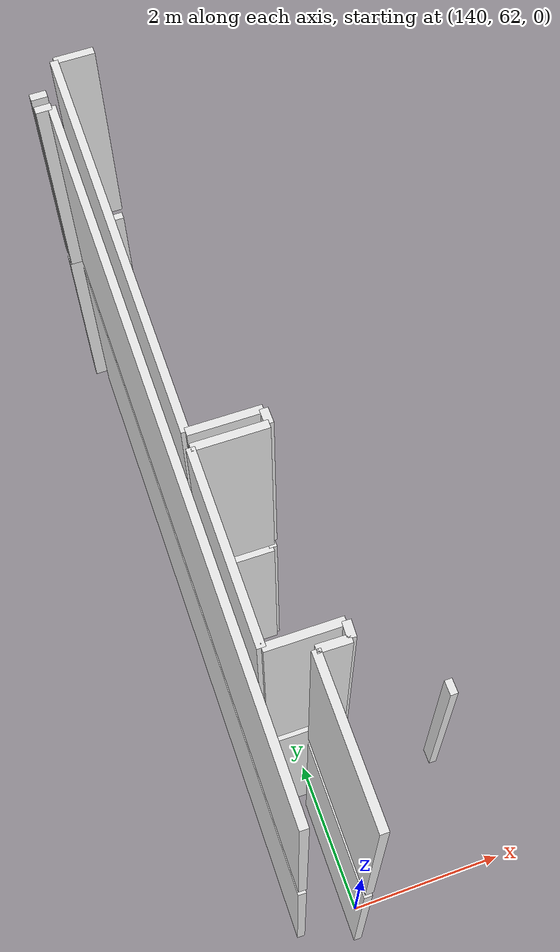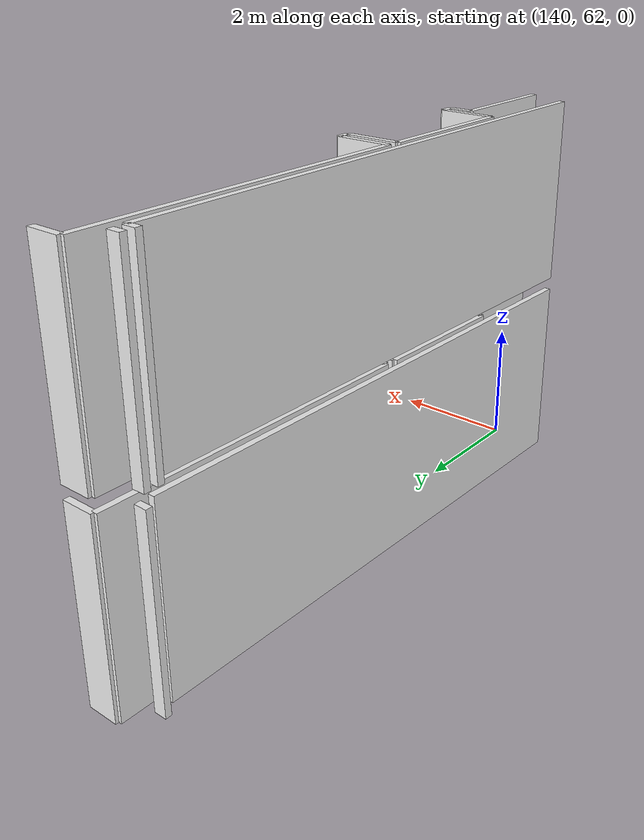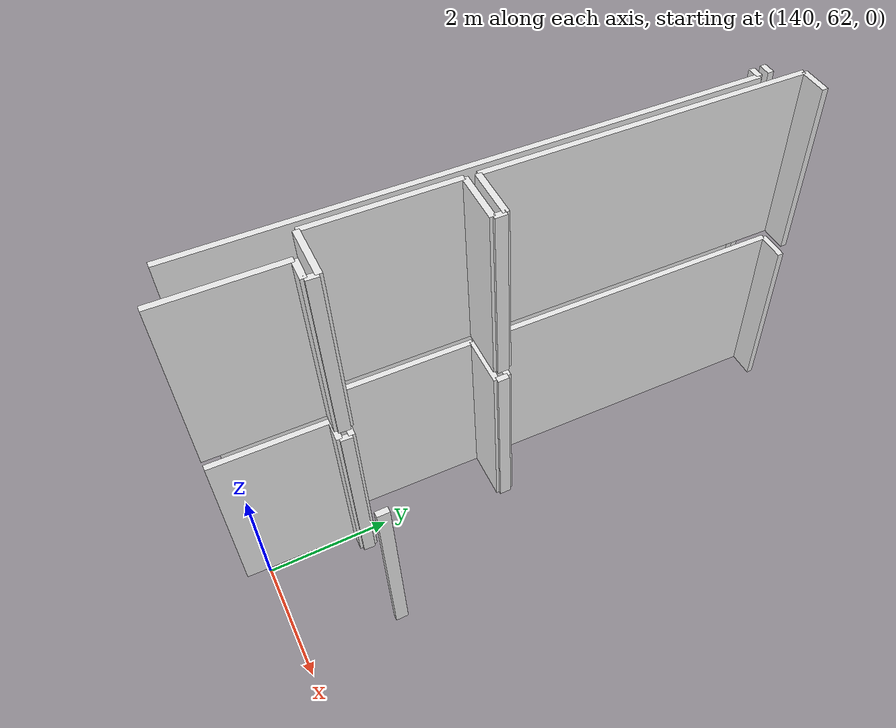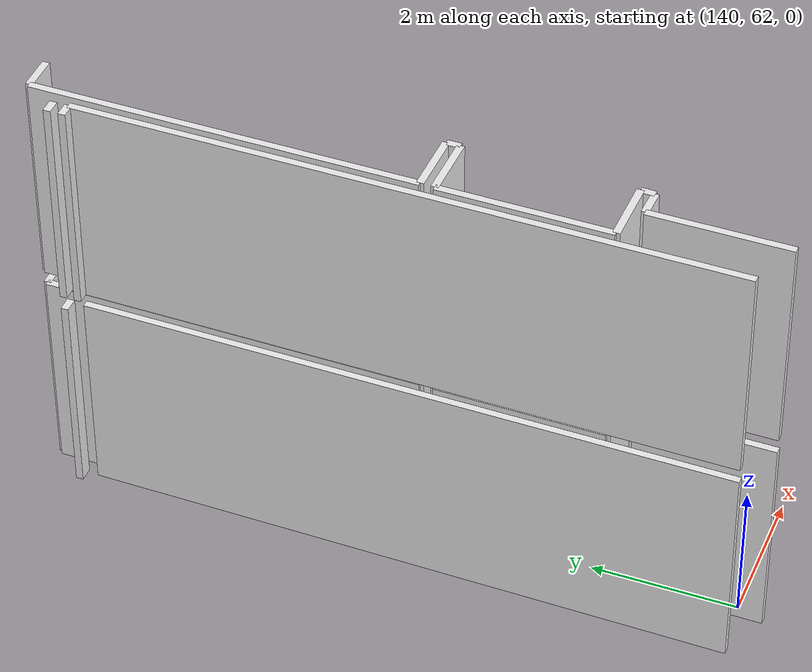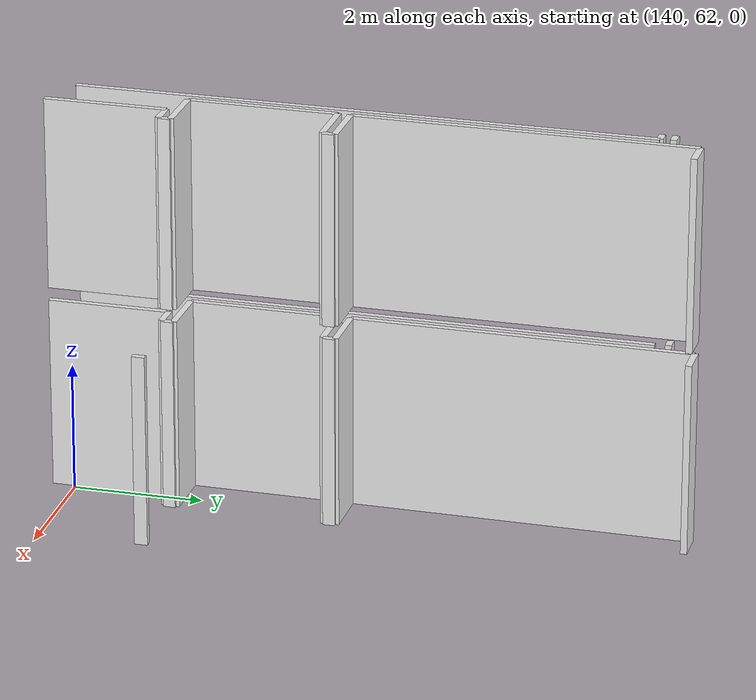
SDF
<sdf version="1.6">
 <world name="default">
  <model name="wall_139.9_66.0_0.0">
   <static>true</static>
   <pose>139.88000000000466 65.99500000011176 1.5 0 0 3.129965270893089</pose>
   <link name="link">
    <visual name="visual">
     <geometry><box><size>0.860058137553213 0.1 3</size></box></geometry>
     <material>
      <script><uri>file://media/materials/scripts/gazebo.material</uri><name>Gazebo/White</name></script>
     </material>
    </visual>
   </link>
  </model>
  <model name="wall_139.4_64.9_0.0">
   <static>true</static>
   <pose>139.43499999999767 64.85000000009313 1.5 0 0 -1.583839065438706</pose>
   <link name="link">
    <visual name="visual">
     <geometry><box><size>2.3001956436670468 0.1 3</size></box></geometry>
     <material>
      <script><uri>file://media/materials/scripts/gazebo.material</uri><name>Gazebo/White</name></script>
     </material>
    </visual>
   </link>
  </model>
  <model name="wall_139.9_63.7_0.0">
   <static>true</static>
   <pose>139.85499999998137 63.69500000006519 1.5 0 0 -0.011493746993381555</pose>
   <link name="link">
    <visual name="visual">
     <geometry><box><size>0.870057469364375 0.1 3</size></box></geometry>
     <material>
      <script><uri>file://media/materials/scripts/gazebo.material</uri><name>Gazebo/White</name></script>
     </material>
    </visual>
   </link>
  </model>
  <model name="wall_139.2_71.0_0.0">
   <static>true</static>
   <pose>139.22000000000116 70.97000000020489 1.5 0 0 0.0</pose>
   <link name="link">
    <visual name="visual">
     <geometry><box><size>0.20000000001164153 0.1 3</size></box></geometry>
     <material>
      <script><uri>file://media/materials/scripts/gazebo.material</uri><name>Gazebo/White</name></script>
     </material>
    </visual>
   </link>
  </model>
  <model name="wall_139.8_71.4_0.0">
   <static>true</static>
   <pose>139.77500000002328 71.41000000014901 1.5 0 0 3.141592653589793</pose>
   <link name="link">
    <visual name="visual">
     <geometry><box><size>0.4899999999906868 0.1 3</size></box></geometry>
     <material>
      <script><uri>file://media/materials/scripts/gazebo.material</uri><name>Gazebo/White</name></script>
     </material>
    </visual>
   </link>
  </model>
  <model name="wall_139.5_68.8_0.0">
   <static>true</static>
   <pose>139.49500000002445 68.80000000004657 1.5 0 0 -1.5842054847435334</pose>
   <link name="link">
    <visual name="visual">
     <geometry><box><size>5.220469327765468 0.1 3</size></box></geometry>
     <material>
      <script><uri>file://media/materials/scripts/gazebo.material</uri><name>Gazebo/White</name></script>
     </material>
    </visual>
   </link>
  </model>
  <model name="wall_139.9_66.2_0.0">
   <static>true</static>
   <pose>139.8850000000093 66.18500000005588 1.5 0 0 -0.011764162887155684</pose>
   <link name="link">
    <visual name="visual">
     <geometry><box><size>0.8500588214682255 0.1 3</size></box></geometry>
     <material>
      <script><uri>file://media/materials/scripts/gazebo.material</uri><name>Gazebo/White</name></script>
     </material>
    </visual>
   </link>
  </model>
  <model name="wall_140.3_66.1_0.0">
   <static>true</static>
   <pose>140.30999999999767 66.08500000019558 1.5 0 0 -1.5707963267948966</pose>
   <link name="link">
    <visual name="visual">
     <geometry><box><size>0.18999999994412065 0.1 3</size></box></geometry>
     <material>
      <script><uri>file://media/materials/scripts/gazebo.material</uri><name>Gazebo/White</name></script>
     </material>
    </visual>
   </link>
  </model>
  <model name="wall_139.3_66.3_0.0">
   <static>true</static>
   <pose>139.26500000001397 66.34000000008382 1.5 0 0 -1.583211038835171</pose>
   <link name="link">
    <visual name="visual">
     <geometry><box><size>8.860682817801711 0.1 3</size></box></geometry>
     <material>
      <script><uri>file://media/materials/scripts/gazebo.material</uri><name>Gazebo/White</name></script>
     </material>
    </visual>
   </link>
  </model>
  <model name="wall_139.9_62.6_0.0">
   <static>true</static>
   <pose>139.89999999999418 62.56999999983236 1.5 0 0 1.5601584302397742</pose>
   <link name="link">
    <visual name="visual">
     <geometry><box><size>1.88010637985679 0.1 3</size></box></geometry>
     <material>
      <script><uri>file://media/materials/scripts/gazebo.material</uri><name>Gazebo/White</name></script>
     </material>
    </visual>
   </link>
  </model>
  <model name="wall_140.1_63.5_0.0">
   <static>true</static>
   <pose>140.09500000000116 63.50499999988824 1.5 0 0 -0.027020448579695773</pose>
   <link name="link">
    <visual name="visual">
     <geometry><box><size>0.3701351105139276 0.1 3</size></box></geometry>
     <material>
      <script><uri>file://media/materials/scripts/gazebo.material</uri><name>Gazebo/White</name></script>
     </material>
    </visual>
   </link>
  </model>
  <model name="wall_140.3_63.6_0.0">
   <static>true</static>
   <pose>140.2850000000035 63.59499999997206 1.5 0 0 1.5182132654251468</pose>
   <link name="link">
    <visual name="visual">
     <geometry><box><size>0.19026297584603252 0.1 3</size></box></geometry>
     <material>
      <script><uri>file://media/materials/scripts/gazebo.material</uri><name>Gazebo/White</name></script>
     </material>
    </visual>
   </link>
  </model>
  <model name="wall_141.7_63.6_0.0">
   <static>true</static>
   <pose>141.69000000000233 63.580000000074506 1.5 0 0 -1.5707963267948966</pose>
   <link name="link">
    <visual name="visual">
     <geometry><box><size>0.20000000018626451 0.1 3</size></box></geometry>
     <material>
      <script><uri>file://media/materials/scripts/gazebo.material</uri><name>Gazebo/White</name></script>
     </material>
    </visual>
   </link>
  </model>
  <model name="wall_139.9_66.0_3.2">
   <static>true</static>
   <pose>139.88000000000466 65.99500000011176 4.7 0 0 3.129965270893089</pose>
   <link name="link">
    <visual name="visual">
     <geometry><box><size>0.860058137553213 0.1 3</size></box></geometry>
     <material>
      <script><uri>file://media/materials/scripts/gazebo.material</uri><name>Gazebo/White</name></script>
     </material>
    </visual>
   </link>
  </model>
  <model name="wall_139.4_64.9_3.2">
   <static>true</static>
   <pose>139.43499999999767 64.85000000009313 4.7 0 0 -1.583839065438706</pose>
   <link name="link">
    <visual name="visual">
     <geometry><box><size>2.3001956436670468 0.1 3</size></box></geometry>
     <material>
      <script><uri>file://media/materials/scripts/gazebo.material</uri><name>Gazebo/White</name></script>
     </material>
    </visual>
   </link>
  </model>
  <model name="wall_139.9_63.7_3.2">
   <static>true</static>
   <pose>139.85499999998137 63.69500000006519 4.7 0 0 -0.011493746993381555</pose>
   <link name="link">
    <visual name="visual">
     <geometry><box><size>0.870057469364375 0.1 3</size></box></geometry>
     <material>
      <script><uri>file://media/materials/scripts/gazebo.material</uri><name>Gazebo/White</name></script>
     </material>
    </visual>
   </link>
  </model>
  <model name="wall_139.2_71.0_3.2">
   <static>true</static>
   <pose>139.22000000000116 70.97000000020489 4.7 0 0 0.0</pose>
   <link name="link">
    <visual name="visual">
     <geometry><box><size>0.20000000001164153 0.1 3</size></box></geometry>
     <material>
      <script><uri>file://media/materials/scripts/gazebo.material</uri><name>Gazebo/White</name></script>
     </material>
    </visual>
   </link>
  </model>
  <model name="wall_139.8_71.4_3.2">
   <static>true</static>
   <pose>139.77500000002328 71.41000000014901 4.7 0 0 3.141592653589793</pose>
   <link name="link">
    <visual name="visual">
     <geometry><box><size>0.4899999999906868 0.1 3</size></box></geometry>
     <material>
      <script><uri>file://media/materials/scripts/gazebo.material</uri><name>Gazebo/White</name></script>
     </material>
    </visual>
   </link>
  </model>
  <model name="wall_139.5_68.8_3.2">
   <static>true</static>
   <pose>139.49500000002445 68.80000000004657 4.7 0 0 -1.5842054847435334</pose>
   <link name="link">
    <visual name="visual">
     <geometry><box><size>5.220469327765468 0.1 3</size></box></geometry>
     <material>
      <script><uri>file://media/materials/scripts/gazebo.material</uri><name>Gazebo/White</name></script>
     </material>
    </visual>
   </link>
  </model>
  <model name="wall_139.9_66.2_3.2">
   <static>true</static>
   <pose>139.8850000000093 66.18500000005588 4.7 0 0 -0.011764162887155684</pose>
   <link name="link">
    <visual name="visual">
     <geometry><box><size>0.8500588214682255 0.1 3</size></box></geometry>
     <material>
      <script><uri>file://media/materials/scripts/gazebo.material</uri><name>Gazebo/White</name></script>
     </material>
    </visual>
   </link>
  </model>
  <model name="wall_140.3_66.1_3.2">
   <static>true</static>
   <pose>140.30999999999767 66.08500000019558 4.7 0 0 -1.5707963267948966</pose>
   <link name="link">
    <visual name="visual">
     <geometry><box><size>0.18999999994412065 0.1 3</size></box></geometry>
     <material>
      <script><uri>file://media/materials/scripts/gazebo.material</uri><name>Gazebo/White</name></script>
     </material>
    </visual>
   </link>
  </model>
  <model name="wall_139.2_70.8_3.2">
   <static>true</static>
   <pose>139.22000000000116 70.77000000001863 4.7 0 0 0.0</pose>
   <link name="link">
    <visual name="visual">
     <geometry><box><size>0.20000000001164153 0.1 3</size></box></geometry>
     <material>
      <script><uri>file://media/materials/scripts/gazebo.material</uri><name>Gazebo/White</name></script>
     </material>
    </visual>
   </link>
  </model>
  <model name="wall_139.3_66.3_3.2">
   <static>true</static>
   <pose>139.26500000001397 66.34000000008382 4.7 0 0 -1.583211038835171</pose>
   <link name="link">
    <visual name="visual">
     <geometry><box><size>8.860682817801711 0.1 3</size></box></geometry>
     <material>
      <script><uri>file://media/materials/scripts/gazebo.material</uri><name>Gazebo/White</name></script>
     </material>
    </visual>
   </link>
  </model>
  <model name="wall_139.9_62.6_3.2">
   <static>true</static>
   <pose>139.89999999999418 62.56999999983236 4.7 0 0 1.5601584302397742</pose>
   <link name="link">
    <visual name="visual">
     <geometry><box><size>1.88010637985679 0.1 3</size></box></geometry>
     <material>
      <script><uri>file://media/materials/scripts/gazebo.material</uri><name>Gazebo/White</name></script>
     </material>
    </visual>
   </link>
  </model>
  <model name="wall_140.1_63.5_3.2">
   <static>true</static>
   <pose>140.09500000000116 63.50499999988824 4.7 0 0 -0.027020448579695773</pose>
   <link name="link">
    <visual name="visual">
     <geometry><box><size>0.3701351105139276 0.1 3</size></box></geometry>
     <material>
      <script><uri>file://media/materials/scripts/gazebo.material</uri><name>Gazebo/White</name></script>
     </material>
    </visual>
   </link>
  </model>
  <model name="wall_140.3_63.6_3.2">
   <static>true</static>
   <pose>140.2850000000035 63.59499999997206 4.7 0 0 1.5182132654251468</pose>
   <link name="link">
    <visual name="visual">
     <geometry><box><size>0.19026297584603252 0.1 3</size></box></geometry>
     <material>
      <script><uri>file://media/materials/scripts/gazebo.material</uri><name>Gazebo/White</name></script>
     </material>
    </visual>
   </link>
  </model>
 </world>
</sdf>
